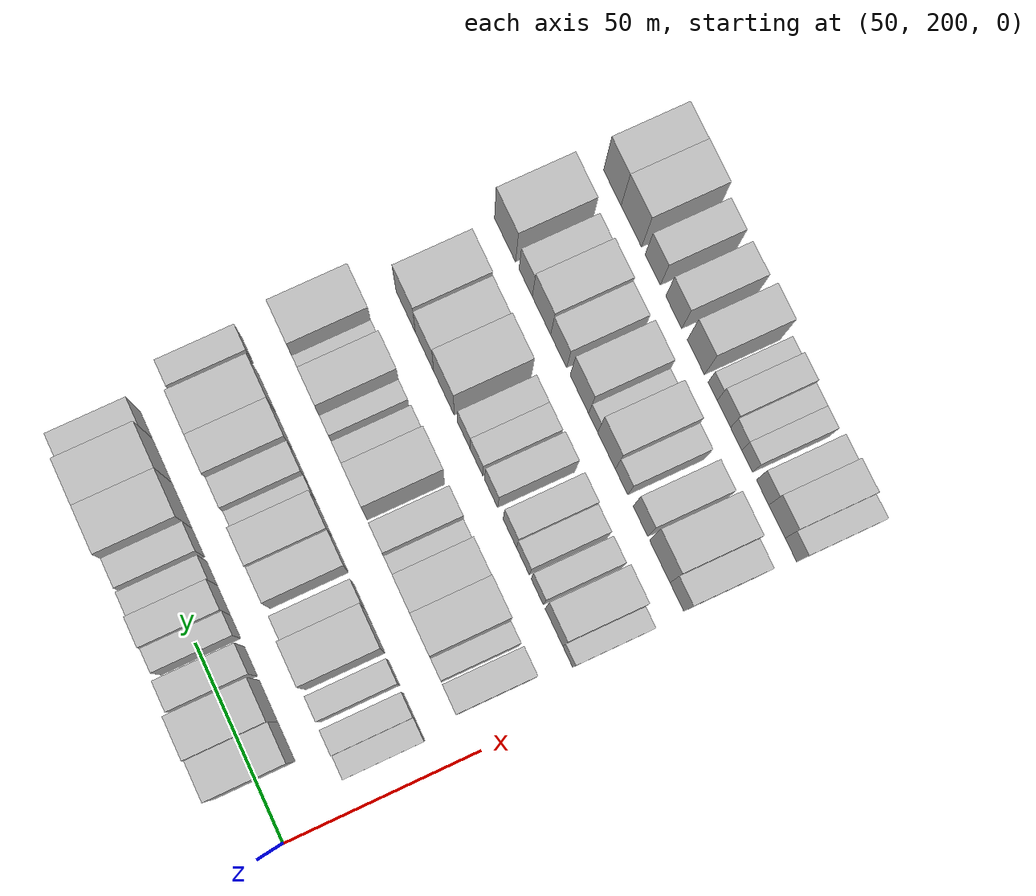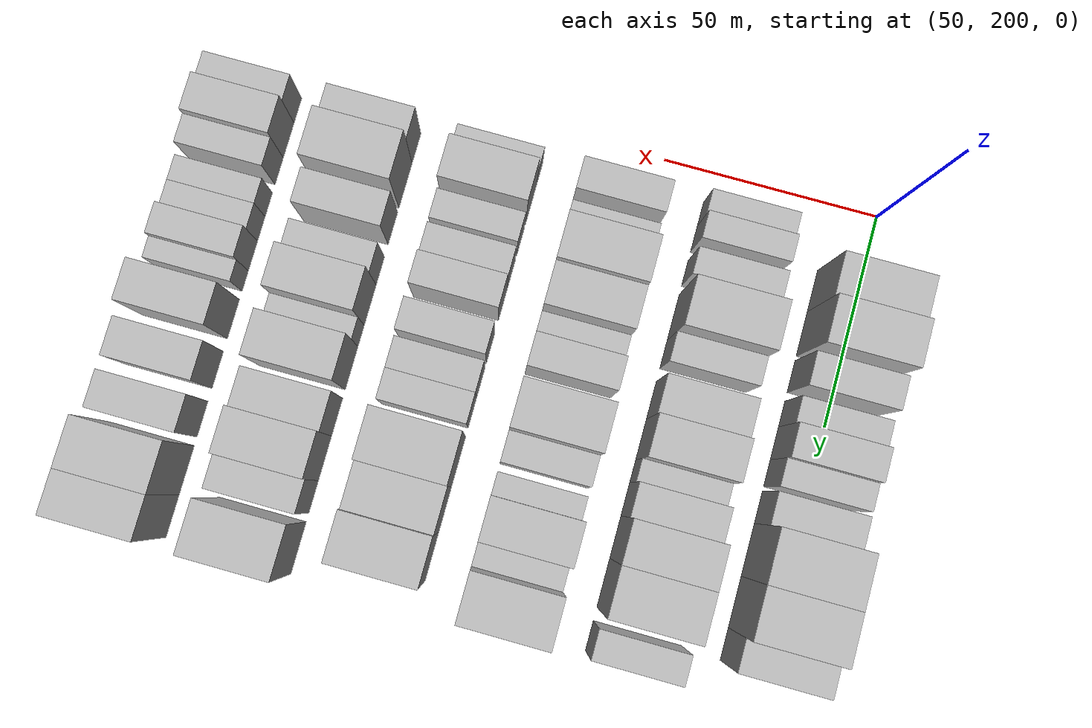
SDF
<sdf version="1.6">
 <world name="default">
  <model name="building_75">
   <static>1</static>
   <pose>50.0000 220.6125 0 0.000000 0.000000 0.000000</pose>
   <link name="link">
    <pose>0 0 10.50 0 0 0</pose>
    <collision name="collision"><geometry><box><size>20.0000 9.9234 21.0000</size></box></geometry></collision>
    <visual name="visual">
     <cast_shadows>0</cast_shadows>
     <geometry><box><size>20.0000 9.9234 21.0000</size></box></geometry>
     <material>
      <script>
       <uri>model://HANNAS_wall/materials/scripts</uri>
       <uri>model://HANNAS_wall/materials/textures</uri>
       <name>vrc/HANNAS_wall</name>
      </script>
     </material>
    </visual>
   </link>
  </model>
  <model name="building_76">
   <static>1</static>
   <pose>50.0000 230.8542 0 0.000000 0.000000 0.000000</pose>
   <link name="link">
    <pose>0 0 12.00 0 0 0</pose>
    <collision name="collision"><geometry><box><size>20.0000 10.5599 24.0000</size></box></geometry></collision>
    <visual name="visual">
     <cast_shadows>0</cast_shadows>
     <geometry><box><size>20.0000 10.5599 24.0000</size></box></geometry>
     <material>
      <script>
       <uri>model://HANNAS_wall/materials/scripts</uri>
       <uri>model://HANNAS_wall/materials/textures</uri>
       <name>vrc/HANNAS_wall</name>
      </script>
     </material>
    </visual>
   </link>
  </model>
  <model name="building_77">
   <static>1</static>
   <pose>50.0000 240.9055 0 0.000000 0.000000 0.000000</pose>
   <link name="link">
    <pose>0 0 9.00 0 0 0</pose>
    <collision name="collision"><geometry><box><size>20.0000 7.5427 18.0000</size></box></geometry></collision>
    <visual name="visual">
     <cast_shadows>0</cast_shadows>
     <geometry><box><size>20.0000 7.5427 18.0000</size></box></geometry>
     <material>
      <script>
       <uri>model://HANNAS_wall/materials/scripts</uri>
       <uri>model://HANNAS_wall/materials/textures</uri>
       <name>vrc/HANNAS_wall</name>
      </script>
     </material>
    </visual>
   </link>
  </model>
  <model name="building_78">
   <static>1</static>
   <pose>50.0000 249.6812 0 0.000000 0.000000 0.000000</pose>
   <link name="link">
    <pose>0 0 7.50 0 0 0</pose>
    <collision name="collision"><geometry><box><size>20.0000 6.0088 15.0000</size></box></geometry></collision>
    <visual name="visual">
     <cast_shadows>0</cast_shadows>
     <geometry><box><size>20.0000 6.0088 15.0000</size></box></geometry>
     <material>
      <script>
       <uri>model://HANNAS_wall/materials/scripts</uri>
       <uri>model://HANNAS_wall/materials/textures</uri>
       <name>vrc/HANNAS_wall</name>
      </script>
     </material>
    </visual>
   </link>
  </model>
  <model name="building_79">
   <static>1</static>
   <pose>50.0000 256.4952 0 0.000000 0.000000 0.000000</pose>
   <link name="link">
    <pose>0 0 9.00 0 0 0</pose>
    <collision name="collision"><geometry><box><size>20.0000 7.6191 18.0000</size></box></geometry></collision>
    <visual name="visual">
     <cast_shadows>0</cast_shadows>
     <geometry><box><size>20.0000 7.6191 18.0000</size></box></geometry>
     <material>
      <script>
       <uri>model://HANNAS_wall/materials/scripts</uri>
       <uri>model://HANNAS_wall/materials/textures</uri>
       <name>vrc/HANNAS_wall</name>
      </script>
     </material>
    </visual>
   </link>
  </model>
  <model name="building_80">
   <static>1</static>
   <pose>50.0000 263.4264 0 0.000000 0.000000 0.000000</pose>
   <link name="link">
    <pose>0 0 7.50 0 0 0</pose>
    <collision name="collision"><geometry><box><size>20.0000 6.2434 15.0000</size></box></geometry></collision>
    <visual name="visual">
     <cast_shadows>0</cast_shadows>
     <geometry><box><size>20.0000 6.2434 15.0000</size></box></geometry>
     <material>
      <script>
       <uri>model://HANNAS_wall/materials/scripts</uri>
       <uri>model://HANNAS_wall/materials/textures</uri>
       <name>vrc/HANNAS_wall</name>
      </script>
     </material>
    </visual>
   </link>
  </model>
  <model name="building_81">
   <static>1</static>
   <pose>50.0000 271.2515 0 0.000000 0.000000 0.000000</pose>
   <link name="link">
    <pose>0 0 7.50 0 0 0</pose>
    <collision name="collision"><geometry><box><size>20.0000 7.4068 15.0000</size></box></geometry></collision>
    <visual name="visual">
     <cast_shadows>0</cast_shadows>
     <geometry><box><size>20.0000 7.4068 15.0000</size></box></geometry>
     <material>
      <script>
       <uri>model://HANNAS_wall/materials/scripts</uri>
       <uri>model://HANNAS_wall/materials/textures</uri>
       <name>vrc/HANNAS_wall</name>
      </script>
     </material>
    </visual>
   </link>
  </model>
  <model name="building_82">
   <static>1</static>
   <pose>50.0000 280.9407 0 0.000000 0.000000 0.000000</pose>
   <link name="link">
    <pose>0 0 12.00 0 0 0</pose>
    <collision name="collision"><geometry><box><size>20.0000 11.9716 24.0000</size></box></geometry></collision>
    <visual name="visual">
     <cast_shadows>0</cast_shadows>
     <geometry><box><size>20.0000 11.9716 24.0000</size></box></geometry>
     <material>
      <script>
       <uri>model://HANNAS_wall/materials/scripts</uri>
       <uri>model://HANNAS_wall/materials/textures</uri>
       <name>vrc/HANNAS_wall</name>
      </script>
     </material>
    </visual>
   </link>
  </model>
  <model name="building_83">
   <static>1</static>
   <pose>50.0000 292.7229 0 0.000000 0.000000 0.000000</pose>
   <link name="link">
    <pose>0 0 12.00 0 0 0</pose>
    <collision name="collision"><geometry><box><size>20.0000 11.5927 24.0000</size></box></geometry></collision>
    <visual name="visual">
     <cast_shadows>0</cast_shadows>
     <geometry><box><size>20.0000 11.5927 24.0000</size></box></geometry>
     <material>
      <script>
       <uri>model://HANNAS_wall/materials/scripts</uri>
       <uri>model://HANNAS_wall/materials/textures</uri>
       <name>vrc/HANNAS_wall</name>
      </script>
     </material>
    </visual>
   </link>
  </model>
  <model name="building_84">
   <static>1</static>
   <pose>50.0000 302.1548 0 0.000000 0.000000 0.000000</pose>
   <link name="link">
    <pose>0 0 9.00 0 0 0</pose>
    <collision name="collision"><geometry><box><size>20.0000 7.2712 18.0000</size></box></geometry></collision>
    <visual name="visual">
     <cast_shadows>0</cast_shadows>
     <geometry><box><size>20.0000 7.2712 18.0000</size></box></geometry>
     <material>
      <script>
       <uri>model://HANNAS_wall/materials/scripts</uri>
       <uri>model://HANNAS_wall/materials/textures</uri>
       <name>vrc/HANNAS_wall</name>
      </script>
     </material>
    </visual>
   </link>
  </model>
  <model name="building_189">
   <static>1</static>
   <pose>79.0000 210.2139 0 0.000000 0.000000 0.000000</pose>
   <link name="link">
    <pose>0 0 6.00 0 0 0</pose>
    <collision name="collision"><geometry><box><size>20.0000 5.8128 12.0000</size></box></geometry></collision>
    <visual name="visual">
     <cast_shadows>0</cast_shadows>
     <geometry><box><size>20.0000 5.8128 12.0000</size></box></geometry>
     <material>
      <script>
       <uri>model://HANNAS_wall/materials/scripts</uri>
       <uri>model://HANNAS_wall/materials/textures</uri>
       <name>vrc/HANNAS_wall</name>
      </script>
     </material>
    </visual>
   </link>
  </model>
  <model name="building_190">
   <static>1</static>
   <pose>79.0000 216.2396 0 0.000000 0.000000 0.000000</pose>
   <link name="link">
    <pose>0 0 7.50 0 0 0</pose>
    <collision name="collision"><geometry><box><size>20.0000 6.2387 15.0000</size></box></geometry></collision>
    <visual name="visual">
     <cast_shadows>0</cast_shadows>
     <geometry><box><size>20.0000 6.2387 15.0000</size></box></geometry>
     <material>
      <script>
       <uri>model://HANNAS_wall/materials/scripts</uri>
       <uri>model://HANNAS_wall/materials/textures</uri>
       <name>vrc/HANNAS_wall</name>
      </script>
     </material>
    </visual>
   </link>
  </model>
  <model name="building_191">
   <static>1</static>
   <pose>79.0000 224.4495 0 0.000000 0.000000 0.000000</pose>
   <link name="link">
    <pose>0 0 7.50 0 0 0</pose>
    <collision name="collision"><geometry><box><size>20.0000 6.1810 15.0000</size></box></geometry></collision>
    <visual name="visual">
     <cast_shadows>0</cast_shadows>
     <geometry><box><size>20.0000 6.1810 15.0000</size></box></geometry>
     <material>
      <script>
       <uri>model://HANNAS_wall/materials/scripts</uri>
       <uri>model://HANNAS_wall/materials/textures</uri>
       <name>vrc/HANNAS_wall</name>
      </script>
     </material>
    </visual>
   </link>
  </model>
  <model name="building_192">
   <static>1</static>
   <pose>79.0000 235.0100 0 0.000000 0.000000 0.000000</pose>
   <link name="link">
    <pose>0 0 12.00 0 0 0</pose>
    <collision name="collision"><geometry><box><size>20.0000 10.9400 24.0000</size></box></geometry></collision>
    <visual name="visual">
     <cast_shadows>0</cast_shadows>
     <geometry><box><size>20.0000 10.9400 24.0000</size></box></geometry>
     <material>
      <script>
       <uri>model://HANNAS_wall/materials/scripts</uri>
       <uri>model://HANNAS_wall/materials/textures</uri>
       <name>vrc/HANNAS_wall</name>
      </script>
     </material>
    </visual>
   </link>
  </model>
  <model name="building_193">
   <static>1</static>
   <pose>79.0000 243.8193 0 0.000000 0.000000 0.000000</pose>
   <link name="link">
    <pose>0 0 7.50 0 0 0</pose>
    <collision name="collision"><geometry><box><size>20.0000 6.6786 15.0000</size></box></geometry></collision>
    <visual name="visual">
     <cast_shadows>0</cast_shadows>
     <geometry><box><size>20.0000 6.6786 15.0000</size></box></geometry>
     <material>
      <script>
       <uri>model://HANNAS_wall/materials/scripts</uri>
       <uri>model://HANNAS_wall/materials/textures</uri>
       <name>vrc/HANNAS_wall</name>
      </script>
     </material>
    </visual>
   </link>
  </model>
  <model name="building_194">
   <static>1</static>
   <pose>79.0000 254.5708 0 0.000000 0.000000 0.000000</pose>
   <link name="link">
    <pose>0 0 9.00 0 0 0</pose>
    <collision name="collision"><geometry><box><size>20.0000 8.8242 18.0000</size></box></geometry></collision>
    <visual name="visual">
     <cast_shadows>0</cast_shadows>
     <geometry><box><size>20.0000 8.8242 18.0000</size></box></geometry>
     <material>
      <script>
       <uri>model://HANNAS_wall/materials/scripts</uri>
       <uri>model://HANNAS_wall/materials/textures</uri>
       <name>vrc/HANNAS_wall</name>
      </script>
     </material>
    </visual>
   </link>
  </model>
  <model name="building_195">
   <static>1</static>
   <pose>79.0000 263.7029 0 0.000000 0.000000 0.000000</pose>
   <link name="link">
    <pose>0 0 10.50 0 0 0</pose>
    <collision name="collision"><geometry><box><size>20.0000 9.4400 21.0000</size></box></geometry></collision>
    <visual name="visual">
     <cast_shadows>0</cast_shadows>
     <geometry><box><size>20.0000 9.4400 21.0000</size></box></geometry>
     <material>
      <script>
       <uri>model://HANNAS_wall/materials/scripts</uri>
       <uri>model://HANNAS_wall/materials/textures</uri>
       <name>vrc/HANNAS_wall</name>
      </script>
     </material>
    </visual>
   </link>
  </model>
  <model name="building_196">
   <static>1</static>
   <pose>79.0000 271.0247 0 0.000000 0.000000 0.000000</pose>
   <link name="link">
    <pose>0 0 6.00 0 0 0</pose>
    <collision name="collision"><geometry><box><size>20.0000 5.2037 12.0000</size></box></geometry></collision>
    <visual name="visual">
     <cast_shadows>0</cast_shadows>
     <geometry><box><size>20.0000 5.2037 12.0000</size></box></geometry>
     <material>
      <script>
       <uri>model://HANNAS_wall/materials/scripts</uri>
       <uri>model://HANNAS_wall/materials/textures</uri>
       <name>vrc/HANNAS_wall</name>
      </script>
     </material>
    </visual>
   </link>
  </model>
  <model name="building_197">
   <static>1</static>
   <pose>79.0000 277.4621 0 0.000000 0.000000 0.000000</pose>
   <link name="link">
    <pose>0 0 9.00 0 0 0</pose>
    <collision name="collision"><geometry><box><size>20.0000 7.6711 18.0000</size></box></geometry></collision>
    <visual name="visual">
     <cast_shadows>0</cast_shadows>
     <geometry><box><size>20.0000 7.6711 18.0000</size></box></geometry>
     <material>
      <script>
       <uri>model://HANNAS_wall/materials/scripts</uri>
       <uri>model://HANNAS_wall/materials/textures</uri>
       <name>vrc/HANNAS_wall</name>
      </script>
     </material>
    </visual>
   </link>
  </model>
  <model name="building_198">
   <static>1</static>
   <pose>79.0000 286.1328 0 0.000000 0.000000 0.000000</pose>
   <link name="link">
    <pose>0 0 12.00 0 0 0</pose>
    <collision name="collision"><geometry><box><size>20.0000 9.6704 24.0000</size></box></geometry></collision>
    <visual name="visual">
     <cast_shadows>0</cast_shadows>
     <geometry><box><size>20.0000 9.6704 24.0000</size></box></geometry>
     <material>
      <script>
       <uri>model://HANNAS_wall/materials/scripts</uri>
       <uri>model://HANNAS_wall/materials/textures</uri>
       <name>vrc/HANNAS_wall</name>
      </script>
     </material>
    </visual>
   </link>
  </model>
  <model name="building_199">
   <static>1</static>
   <pose>79.0000 296.4888 0 0.000000 0.000000 0.000000</pose>
   <link name="link">
    <pose>0 0 12.00 0 0 0</pose>
    <collision name="collision"><geometry><box><size>20.0000 11.0415 24.0000</size></box></geometry></collision>
    <visual name="visual">
     <cast_shadows>0</cast_shadows>
     <geometry><box><size>20.0000 11.0415 24.0000</size></box></geometry>
     <material>
      <script>
       <uri>model://HANNAS_wall/materials/scripts</uri>
       <uri>model://HANNAS_wall/materials/textures</uri>
       <name>vrc/HANNAS_wall</name>
      </script>
     </material>
    </visual>
   </link>
  </model>
  <model name="building_200">
   <static>1</static>
   <pose>79.0000 308.3689 0 0.000000 0.000000 0.000000</pose>
   <link name="link">
    <pose>0 0 7.50 0 0 0</pose>
    <collision name="collision"><geometry><box><size>20.0000 6.7187 15.0000</size></box></geometry></collision>
    <visual name="visual">
     <cast_shadows>0</cast_shadows>
     <geometry><box><size>20.0000 6.7187 15.0000</size></box></geometry>
     <material>
      <script>
       <uri>model://HANNAS_wall/materials/scripts</uri>
       <uri>model://HANNAS_wall/materials/textures</uri>
       <name>vrc/HANNAS_wall</name>
      </script>
     </material>
    </visual>
   </link>
  </model>
  <model name="building_297">
   <static>1</static>
   <pose>108.0000 213.3092 0 0.000000 0.000000 0.000000</pose>
   <link name="link">
    <pose>0 0 9.00 0 0 0</pose>
    <collision name="collision"><geometry><box><size>20.0000 7.2638 18.0000</size></box></geometry></collision>
    <visual name="visual">
     <cast_shadows>0</cast_shadows>
     <geometry><box><size>20.0000 7.2638 18.0000</size></box></geometry>
     <material>
      <script>
       <uri>model://HANNAS_wall/materials/scripts</uri>
       <uri>model://HANNAS_wall/materials/textures</uri>
       <name>vrc/HANNAS_wall</name>
      </script>
     </material>
    </visual>
   </link>
  </model>
  <model name="building_298">
   <static>1</static>
   <pose>108.0000 220.7057 0 0.000000 0.000000 0.000000</pose>
   <link name="link">
    <pose>0 0 6.00 0 0 0</pose>
    <collision name="collision"><geometry><box><size>20.0000 5.5292 12.0000</size></box></geometry></collision>
    <visual name="visual">
     <cast_shadows>0</cast_shadows>
     <geometry><box><size>20.0000 5.5292 12.0000</size></box></geometry>
     <material>
      <script>
       <uri>model://HANNAS_wall/materials/scripts</uri>
       <uri>model://HANNAS_wall/materials/textures</uri>
       <name>vrc/HANNAS_wall</name>
      </script>
     </material>
    </visual>
   </link>
  </model>
  <model name="building_299">
   <static>1</static>
   <pose>108.0000 228.6592 0 0.000000 0.000000 0.000000</pose>
   <link name="link">
    <pose>0 0 12.00 0 0 0</pose>
    <collision name="collision"><geometry><box><size>20.0000 10.3778 24.0000</size></box></geometry></collision>
    <visual name="visual">
     <cast_shadows>0</cast_shadows>
     <geometry><box><size>20.0000 10.3778 24.0000</size></box></geometry>
     <material>
      <script>
       <uri>model://HANNAS_wall/materials/scripts</uri>
       <uri>model://HANNAS_wall/materials/textures</uri>
       <name>vrc/HANNAS_wall</name>
      </script>
     </material>
    </visual>
   </link>
  </model>
  <model name="building_300">
   <static>1</static>
   <pose>108.0000 238.6623 0 0.000000 0.000000 0.000000</pose>
   <link name="link">
    <pose>0 0 10.50 0 0 0</pose>
    <collision name="collision"><geometry><box><size>20.0000 9.6283 21.0000</size></box></geometry></collision>
    <visual name="visual">
     <cast_shadows>0</cast_shadows>
     <geometry><box><size>20.0000 9.6283 21.0000</size></box></geometry>
     <material>
      <script>
       <uri>model://HANNAS_wall/materials/scripts</uri>
       <uri>model://HANNAS_wall/materials/textures</uri>
       <name>vrc/HANNAS_wall</name>
      </script>
     </material>
    </visual>
   </link>
  </model>
  <model name="building_301">
   <static>1</static>
   <pose>108.0000 246.2206 0 0.000000 0.000000 0.000000</pose>
   <link name="link">
    <pose>0 0 6.00 0 0 0</pose>
    <collision name="collision"><geometry><box><size>20.0000 5.4883 12.0000</size></box></geometry></collision>
    <visual name="visual">
     <cast_shadows>0</cast_shadows>
     <geometry><box><size>20.0000 5.4883 12.0000</size></box></geometry>
     <material>
      <script>
       <uri>model://HANNAS_wall/materials/scripts</uri>
       <uri>model://HANNAS_wall/materials/textures</uri>
       <name>vrc/HANNAS_wall</name>
      </script>
     </material>
    </visual>
   </link>
  </model>
  <model name="building_302">
   <static>1</static>
   <pose>108.0000 252.7534 0 0.000000 0.000000 0.000000</pose>
   <link name="link">
    <pose>0 0 9.00 0 0 0</pose>
    <collision name="collision"><geometry><box><size>20.0000 7.5772 18.0000</size></box></geometry></collision>
    <visual name="visual">
     <cast_shadows>0</cast_shadows>
     <geometry><box><size>20.0000 7.5772 18.0000</size></box></geometry>
     <material>
      <script>
       <uri>model://HANNAS_wall/materials/scripts</uri>
       <uri>model://HANNAS_wall/materials/textures</uri>
       <name>vrc/HANNAS_wall</name>
      </script>
     </material>
    </visual>
   </link>
  </model>
  <model name="building_303">
   <static>1</static>
   <pose>108.0000 264.9683 0 0.000000 0.000000 0.000000</pose>
   <link name="link">
    <pose>0 0 12.00 0 0 0</pose>
    <collision name="collision"><geometry><box><size>20.0000 10.8527 24.0000</size></box></geometry></collision>
    <visual name="visual">
     <cast_shadows>0</cast_shadows>
     <geometry><box><size>20.0000 10.8527 24.0000</size></box></geometry>
     <material>
      <script>
       <uri>model://HANNAS_wall/materials/scripts</uri>
       <uri>model://HANNAS_wall/materials/textures</uri>
       <name>vrc/HANNAS_wall</name>
      </script>
     </material>
    </visual>
   </link>
  </model>
  <model name="building_304">
   <static>1</static>
   <pose>108.0000 273.9052 0 0.000000 0.000000 0.000000</pose>
   <link name="link">
    <pose>0 0 7.50 0 0 0</pose>
    <collision name="collision"><geometry><box><size>20.0000 7.0211 15.0000</size></box></geometry></collision>
    <visual name="visual">
     <cast_shadows>0</cast_shadows>
     <geometry><box><size>20.0000 7.0211 15.0000</size></box></geometry>
     <material>
      <script>
       <uri>model://HANNAS_wall/materials/scripts</uri>
       <uri>model://HANNAS_wall/materials/textures</uri>
       <name>vrc/HANNAS_wall</name>
      </script>
     </material>
    </visual>
   </link>
  </model>
  <model name="building_305">
   <static>1</static>
   <pose>108.0000 282.0111 0 0.000000 0.000000 0.000000</pose>
   <link name="link">
    <pose>0 0 6.00 0 0 0</pose>
    <collision name="collision"><geometry><box><size>20.0000 5.1906 12.0000</size></box></geometry></collision>
    <visual name="visual">
     <cast_shadows>0</cast_shadows>
     <geometry><box><size>20.0000 5.1906 12.0000</size></box></geometry>
     <material>
      <script>
       <uri>model://HANNAS_wall/materials/scripts</uri>
       <uri>model://HANNAS_wall/materials/textures</uri>
       <name>vrc/HANNAS_wall</name>
      </script>
     </material>
    </visual>
   </link>
  </model>
  <model name="building_306">
   <static>1</static>
   <pose>108.0000 289.4498 0 0.000000 0.000000 0.000000</pose>
   <link name="link">
    <pose>0 0 12.00 0 0 0</pose>
    <collision name="collision"><geometry><box><size>20.0000 9.6869 24.0000</size></box></geometry></collision>
    <visual name="visual">
     <cast_shadows>0</cast_shadows>
     <geometry><box><size>20.0000 9.6869 24.0000</size></box></geometry>
     <material>
      <script>
       <uri>model://HANNAS_wall/materials/scripts</uri>
       <uri>model://HANNAS_wall/materials/textures</uri>
       <name>vrc/HANNAS_wall</name>
      </script>
     </material>
    </visual>
   </link>
  </model>
  <model name="building_307">
   <static>1</static>
   <pose>108.0000 297.1903 0 0.000000 0.000000 0.000000</pose>
   <link name="link">
    <pose>0 0 6.00 0 0 0</pose>
    <collision name="collision"><geometry><box><size>20.0000 5.7941 12.0000</size></box></geometry></collision>
    <visual name="visual">
     <cast_shadows>0</cast_shadows>
     <geometry><box><size>20.0000 5.7941 12.0000</size></box></geometry>
     <material>
      <script>
       <uri>model://HANNAS_wall/materials/scripts</uri>
       <uri>model://HANNAS_wall/materials/textures</uri>
       <name>vrc/HANNAS_wall</name>
      </script>
     </material>
    </visual>
   </link>
  </model>
  <model name="building_308">
   <static>1</static>
   <pose>108.0000 305.6947 0 0.000000 0.000000 0.000000</pose>
   <link name="link">
    <pose>0 0 12.00 0 0 0</pose>
    <collision name="collision"><geometry><box><size>20.0000 11.2147 24.0000</size></box></geometry></collision>
    <visual name="visual">
     <cast_shadows>0</cast_shadows>
     <geometry><box><size>20.0000 11.2147 24.0000</size></box></geometry>
     <material>
      <script>
       <uri>model://HANNAS_wall/materials/scripts</uri>
       <uri>model://HANNAS_wall/materials/textures</uri>
       <name>vrc/HANNAS_wall</name>
      </script>
     </material>
    </visual>
   </link>
  </model>
  <model name="building_409">
   <static>1</static>
   <pose>137.0000 210.9420 0 0.000000 0.000000 0.000000</pose>
   <link name="link">
    <pose>0 0 6.00 0 0 0</pose>
    <collision name="collision"><geometry><box><size>20.0000 5.3533 12.0000</size></box></geometry></collision>
    <visual name="visual">
     <cast_shadows>0</cast_shadows>
     <geometry><box><size>20.0000 5.3533 12.0000</size></box></geometry>
     <material>
      <script>
       <uri>model://HANNAS_wall/materials/scripts</uri>
       <uri>model://HANNAS_wall/materials/textures</uri>
       <name>vrc/HANNAS_wall</name>
      </script>
     </material>
    </visual>
   </link>
  </model>
  <model name="building_410">
   <static>1</static>
   <pose>137.0000 218.4170 0 0.000000 0.000000 0.000000</pose>
   <link name="link">
    <pose>0 0 10.50 0 0 0</pose>
    <collision name="collision"><geometry><box><size>20.0000 9.5969 21.0000</size></box></geometry></collision>
    <visual name="visual">
     <cast_shadows>0</cast_shadows>
     <geometry><box><size>20.0000 9.5969 21.0000</size></box></geometry>
     <material>
      <script>
       <uri>model://HANNAS_wall/materials/scripts</uri>
       <uri>model://HANNAS_wall/materials/textures</uri>
       <name>vrc/HANNAS_wall</name>
      </script>
     </material>
    </visual>
   </link>
  </model>
  <model name="building_411">
   <static>1</static>
   <pose>137.0000 227.5620 0 0.000000 0.000000 0.000000</pose>
   <link name="link">
    <pose>0 0 7.50 0 0 0</pose>
    <collision name="collision"><geometry><box><size>20.0000 6.6931 15.0000</size></box></geometry></collision>
    <visual name="visual">
     <cast_shadows>0</cast_shadows>
     <geometry><box><size>20.0000 6.6931 15.0000</size></box></geometry>
     <material>
      <script>
       <uri>model://HANNAS_wall/materials/scripts</uri>
       <uri>model://HANNAS_wall/materials/textures</uri>
       <name>vrc/HANNAS_wall</name>
      </script>
     </material>
    </visual>
   </link>
  </model>
  <model name="building_412">
   <static>1</static>
   <pose>137.0000 235.4101 0 0.000000 0.000000 0.000000</pose>
   <link name="link">
    <pose>0 0 7.50 0 0 0</pose>
    <collision name="collision"><geometry><box><size>20.0000 7.0031 15.0000</size></box></geometry></collision>
    <visual name="visual">
     <cast_shadows>0</cast_shadows>
     <geometry><box><size>20.0000 7.0031 15.0000</size></box></geometry>
     <material>
      <script>
       <uri>model://HANNAS_wall/materials/scripts</uri>
       <uri>model://HANNAS_wall/materials/textures</uri>
       <name>vrc/HANNAS_wall</name>
      </script>
     </material>
    </visual>
   </link>
  </model>
  <model name="building_413">
   <static>1</static>
   <pose>137.0000 242.6305 0 0.000000 0.000000 0.000000</pose>
   <link name="link">
    <pose>0 0 9.00 0 0 0</pose>
    <collision name="collision"><geometry><box><size>20.0000 7.4377 18.0000</size></box></geometry></collision>
    <visual name="visual">
     <cast_shadows>0</cast_shadows>
     <geometry><box><size>20.0000 7.4377 18.0000</size></box></geometry>
     <material>
      <script>
       <uri>model://HANNAS_wall/materials/scripts</uri>
       <uri>model://HANNAS_wall/materials/textures</uri>
       <name>vrc/HANNAS_wall</name>
      </script>
     </material>
    </visual>
   </link>
  </model>
  <model name="building_414">
   <static>1</static>
   <pose>137.0000 252.9857 0 0.000000 0.000000 0.000000</pose>
   <link name="link">
    <pose>0 0 9.00 0 0 0</pose>
    <collision name="collision"><geometry><box><size>20.0000 7.2727 18.0000</size></box></geometry></collision>
    <visual name="visual">
     <cast_shadows>0</cast_shadows>
     <geometry><box><size>20.0000 7.2727 18.0000</size></box></geometry>
     <material>
      <script>
       <uri>model://HANNAS_wall/materials/scripts</uri>
       <uri>model://HANNAS_wall/materials/textures</uri>
       <name>vrc/HANNAS_wall</name>
      </script>
     </material>
    </visual>
   </link>
  </model>
  <model name="building_415">
   <static>1</static>
   <pose>137.0000 261.1568 0 0.000000 0.000000 0.000000</pose>
   <link name="link">
    <pose>0 0 7.50 0 0 0</pose>
    <collision name="collision"><geometry><box><size>20.0000 7.0695 15.0000</size></box></geometry></collision>
    <visual name="visual">
     <cast_shadows>0</cast_shadows>
     <geometry><box><size>20.0000 7.0695 15.0000</size></box></geometry>
     <material>
      <script>
       <uri>model://HANNAS_wall/materials/scripts</uri>
       <uri>model://HANNAS_wall/materials/textures</uri>
       <name>vrc/HANNAS_wall</name>
      </script>
     </material>
    </visual>
   </link>
  </model>
  <model name="building_416">
   <static>1</static>
   <pose>137.0000 268.1828 0 0.000000 0.000000 0.000000</pose>
   <link name="link">
    <pose>0 0 7.50 0 0 0</pose>
    <collision name="collision"><geometry><box><size>20.0000 6.9826 15.0000</size></box></geometry></collision>
    <visual name="visual">
     <cast_shadows>0</cast_shadows>
     <geometry><box><size>20.0000 6.9826 15.0000</size></box></geometry>
     <material>
      <script>
       <uri>model://HANNAS_wall/materials/scripts</uri>
       <uri>model://HANNAS_wall/materials/textures</uri>
       <name>vrc/HANNAS_wall</name>
      </script>
     </material>
    </visual>
   </link>
  </model>
  <model name="building_417">
   <static>1</static>
   <pose>137.0000 279.4646 0 0.000000 0.000000 0.000000</pose>
   <link name="link">
    <pose>0 0 12.00 0 0 0</pose>
    <collision name="collision"><geometry><box><size>20.0000 11.5808 24.0000</size></box></geometry></collision>
    <visual name="visual">
     <cast_shadows>0</cast_shadows>
     <geometry><box><size>20.0000 11.5808 24.0000</size></box></geometry>
     <material>
      <script>
       <uri>model://HANNAS_wall/materials/scripts</uri>
       <uri>model://HANNAS_wall/materials/textures</uri>
       <name>vrc/HANNAS_wall</name>
      </script>
     </material>
    </visual>
   </link>
  </model>
  <model name="building_418">
   <static>1</static>
   <pose>137.0000 290.4522 0 0.000000 0.000000 0.000000</pose>
   <link name="link">
    <pose>0 0 10.50 0 0 0</pose>
    <collision name="collision"><geometry><box><size>20.0000 10.3944 21.0000</size></box></geometry></collision>
    <visual name="visual">
     <cast_shadows>0</cast_shadows>
     <geometry><box><size>20.0000 10.3944 21.0000</size></box></geometry>
     <material>
      <script>
       <uri>model://HANNAS_wall/materials/scripts</uri>
       <uri>model://HANNAS_wall/materials/textures</uri>
       <name>vrc/HANNAS_wall</name>
      </script>
     </material>
    </visual>
   </link>
  </model>
  <model name="building_419">
   <static>1</static>
   <pose>137.0000 301.1891 0 0.000000 0.000000 0.000000</pose>
   <link name="link">
    <pose>0 0 12.00 0 0 0</pose>
    <collision name="collision"><geometry><box><size>20.0000 11.0795 24.0000</size></box></geometry></collision>
    <visual name="visual">
     <cast_shadows>0</cast_shadows>
     <geometry><box><size>20.0000 11.0795 24.0000</size></box></geometry>
     <material>
      <script>
       <uri>model://HANNAS_wall/materials/scripts</uri>
       <uri>model://HANNAS_wall/materials/textures</uri>
       <name>vrc/HANNAS_wall</name>
      </script>
     </material>
    </visual>
   </link>
  </model>
  <model name="building_530">
   <static>1</static>
   <pose>166.0000 212.7707 0 0.000000 0.000000 0.000000</pose>
   <link name="link">
    <pose>0 0 9.00 0 0 0</pose>
    <collision name="collision"><geometry><box><size>20.0000 7.3606 18.0000</size></box></geometry></collision>
    <visual name="visual">
     <cast_shadows>0</cast_shadows>
     <geometry><box><size>20.0000 7.3606 18.0000</size></box></geometry>
     <material>
      <script>
       <uri>model://HANNAS_wall/materials/scripts</uri>
       <uri>model://HANNAS_wall/materials/textures</uri>
       <name>vrc/HANNAS_wall</name>
      </script>
     </material>
    </visual>
   </link>
  </model>
  <model name="building_531">
   <static>1</static>
   <pose>166.0000 221.9072 0 0.000000 0.000000 0.000000</pose>
   <link name="link">
    <pose>0 0 12.00 0 0 0</pose>
    <collision name="collision"><geometry><box><size>20.0000 10.9125 24.0000</size></box></geometry></collision>
    <visual name="visual">
     <cast_shadows>0</cast_shadows>
     <geometry><box><size>20.0000 10.9125 24.0000</size></box></geometry>
     <material>
      <script>
       <uri>model://HANNAS_wall/materials/scripts</uri>
       <uri>model://HANNAS_wall/materials/textures</uri>
       <name>vrc/HANNAS_wall</name>
      </script>
     </material>
    </visual>
   </link>
  </model>
  <model name="building_532">
   <static>1</static>
   <pose>166.0000 232.2874 0 0.000000 0.000000 0.000000</pose>
   <link name="link">
    <pose>0 0 9.00 0 0 0</pose>
    <collision name="collision"><geometry><box><size>20.0000 7.8477 18.0000</size></box></geometry></collision>
    <visual name="visual">
     <cast_shadows>0</cast_shadows>
     <geometry><box><size>20.0000 7.8477 18.0000</size></box></geometry>
     <material>
      <script>
       <uri>model://HANNAS_wall/materials/scripts</uri>
       <uri>model://HANNAS_wall/materials/textures</uri>
       <name>vrc/HANNAS_wall</name>
      </script>
     </material>
    </visual>
   </link>
  </model>
  <model name="building_533">
   <static>1</static>
   <pose>166.0000 242.5824 0 0.000000 0.000000 0.000000</pose>
   <link name="link">
    <pose>0 0 7.50 0 0 0</pose>
    <collision name="collision"><geometry><box><size>20.0000 6.7424 15.0000</size></box></geometry></collision>
    <visual name="visual">
     <cast_shadows>0</cast_shadows>
     <geometry><box><size>20.0000 6.7424 15.0000</size></box></geometry>
     <material>
      <script>
       <uri>model://HANNAS_wall/materials/scripts</uri>
       <uri>model://HANNAS_wall/materials/textures</uri>
       <name>vrc/HANNAS_wall</name>
      </script>
     </material>
    </visual>
   </link>
  </model>
  <model name="building_534">
   <static>1</static>
   <pose>166.0000 250.7622 0 0.000000 0.000000 0.000000</pose>
   <link name="link">
    <pose>0 0 10.50 0 0 0</pose>
    <collision name="collision"><geometry><box><size>20.0000 9.6173 21.0000</size></box></geometry></collision>
    <visual name="visual">
     <cast_shadows>0</cast_shadows>
     <geometry><box><size>20.0000 9.6173 21.0000</size></box></geometry>
     <material>
      <script>
       <uri>model://HANNAS_wall/materials/scripts</uri>
       <uri>model://HANNAS_wall/materials/textures</uri>
       <name>vrc/HANNAS_wall</name>
      </script>
     </material>
    </visual>
   </link>
  </model>
  <model name="building_535">
   <static>1</static>
   <pose>166.0000 258.0806 0 0.000000 0.000000 0.000000</pose>
   <link name="link">
    <pose>0 0 6.00 0 0 0</pose>
    <collision name="collision"><geometry><box><size>20.0000 5.0195 12.0000</size></box></geometry></collision>
    <visual name="visual">
     <cast_shadows>0</cast_shadows>
     <geometry><box><size>20.0000 5.0195 12.0000</size></box></geometry>
     <material>
      <script>
       <uri>model://HANNAS_wall/materials/scripts</uri>
       <uri>model://HANNAS_wall/materials/textures</uri>
       <name>vrc/HANNAS_wall</name>
      </script>
     </material>
    </visual>
   </link>
  </model>
  <model name="building_536">
   <static>1</static>
   <pose>166.0000 265.6817 0 0.000000 0.000000 0.000000</pose>
   <link name="link">
    <pose>0 0 10.50 0 0 0</pose>
    <collision name="collision"><geometry><box><size>20.0000 10.1827 21.0000</size></box></geometry></collision>
    <visual name="visual">
     <cast_shadows>0</cast_shadows>
     <geometry><box><size>20.0000 10.1827 21.0000</size></box></geometry>
     <material>
      <script>
       <uri>model://HANNAS_wall/materials/scripts</uri>
       <uri>model://HANNAS_wall/materials/textures</uri>
       <name>vrc/HANNAS_wall</name>
      </script>
     </material>
    </visual>
   </link>
  </model>
  <model name="building_537">
   <static>1</static>
   <pose>166.0000 277.1974 0 0.000000 0.000000 0.000000</pose>
   <link name="link">
    <pose>0 0 9.00 0 0 0</pose>
    <collision name="collision"><geometry><box><size>20.0000 8.8487 18.0000</size></box></geometry></collision>
    <visual name="visual">
     <cast_shadows>0</cast_shadows>
     <geometry><box><size>20.0000 8.8487 18.0000</size></box></geometry>
     <material>
      <script>
       <uri>model://HANNAS_wall/materials/scripts</uri>
       <uri>model://HANNAS_wall/materials/textures</uri>
       <name>vrc/HANNAS_wall</name>
      </script>
     </material>
    </visual>
   </link>
  </model>
  <model name="building_538">
   <static>1</static>
   <pose>166.0000 286.7512 0 0.000000 0.000000 0.000000</pose>
   <link name="link">
    <pose>0 0 10.50 0 0 0</pose>
    <collision name="collision"><geometry><box><size>20.0000 10.2589 21.0000</size></box></geometry></collision>
    <visual name="visual">
     <cast_shadows>0</cast_shadows>
     <geometry><box><size>20.0000 10.2589 21.0000</size></box></geometry>
     <material>
      <script>
       <uri>model://HANNAS_wall/materials/scripts</uri>
       <uri>model://HANNAS_wall/materials/textures</uri>
       <name>vrc/HANNAS_wall</name>
      </script>
     </material>
    </visual>
   </link>
  </model>
  <model name="building_539">
   <static>1</static>
   <pose>166.0000 295.6005 0 0.000000 0.000000 0.000000</pose>
   <link name="link">
    <pose>0 0 9.00 0 0 0</pose>
    <collision name="collision"><geometry><box><size>20.0000 7.4397 18.0000</size></box></geometry></collision>
    <visual name="visual">
     <cast_shadows>0</cast_shadows>
     <geometry><box><size>20.0000 7.4397 18.0000</size></box></geometry>
     <material>
      <script>
       <uri>model://HANNAS_wall/materials/scripts</uri>
       <uri>model://HANNAS_wall/materials/textures</uri>
       <name>vrc/HANNAS_wall</name>
      </script>
     </material>
    </visual>
   </link>
  </model>
  <model name="building_540">
   <static>1</static>
   <pose>166.0000 307.2718 0 0.000000 0.000000 0.000000</pose>
   <link name="link">
    <pose>0 0 12.00 0 0 0</pose>
    <collision name="collision"><geometry><box><size>20.0000 11.9030 24.0000</size></box></geometry></collision>
    <visual name="visual">
     <cast_shadows>0</cast_shadows>
     <geometry><box><size>20.0000 11.9030 24.0000</size></box></geometry>
     <material>
      <script>
       <uri>model://HANNAS_wall/materials/scripts</uri>
       <uri>model://HANNAS_wall/materials/textures</uri>
       <name>vrc/HANNAS_wall</name>
      </script>
     </material>
    </visual>
   </link>
  </model>
  <model name="building_643">
   <static>1</static>
   <pose>195.0000 211.4371 0 0.000000 0.000000 0.000000</pose>
   <link name="link">
    <pose>0 0 7.50 0 0 0</pose>
    <collision name="collision"><geometry><box><size>20.0000 6.1326 15.0000</size></box></geometry></collision>
    <visual name="visual">
     <cast_shadows>0</cast_shadows>
     <geometry><box><size>20.0000 6.1326 15.0000</size></box></geometry>
     <material>
      <script>
       <uri>model://HANNAS_wall/materials/scripts</uri>
       <uri>model://HANNAS_wall/materials/textures</uri>
       <name>vrc/HANNAS_wall</name>
      </script>
     </material>
    </visual>
   </link>
  </model>
  <model name="building_644">
   <static>1</static>
   <pose>195.0000 218.7978 0 0.000000 0.000000 0.000000</pose>
   <link name="link">
    <pose>0 0 9.00 0 0 0</pose>
    <collision name="collision"><geometry><box><size>20.0000 8.5888 18.0000</size></box></geometry></collision>
    <visual name="visual">
     <cast_shadows>0</cast_shadows>
     <geometry><box><size>20.0000 8.5888 18.0000</size></box></geometry>
     <material>
      <script>
       <uri>model://HANNAS_wall/materials/scripts</uri>
       <uri>model://HANNAS_wall/materials/textures</uri>
       <name>vrc/HANNAS_wall</name>
      </script>
     </material>
    </visual>
   </link>
  </model>
  <model name="building_645">
   <static>1</static>
   <pose>195.0000 226.3855 0 0.000000 0.000000 0.000000</pose>
   <link name="link">
    <pose>0 0 7.50 0 0 0</pose>
    <collision name="collision"><geometry><box><size>20.0000 6.5867 15.0000</size></box></geometry></collision>
    <visual name="visual">
     <cast_shadows>0</cast_shadows>
     <geometry><box><size>20.0000 6.5867 15.0000</size></box></geometry>
     <material>
      <script>
       <uri>model://HANNAS_wall/materials/scripts</uri>
       <uri>model://HANNAS_wall/materials/textures</uri>
       <name>vrc/HANNAS_wall</name>
      </script>
     </material>
    </visual>
   </link>
  </model>
  <model name="building_646">
   <static>1</static>
   <pose>195.0000 234.5809 0 0.000000 0.000000 0.000000</pose>
   <link name="link">
    <pose>0 0 6.00 0 0 0</pose>
    <collision name="collision"><geometry><box><size>20.0000 5.8040 12.0000</size></box></geometry></collision>
    <visual name="visual">
     <cast_shadows>0</cast_shadows>
     <geometry><box><size>20.0000 5.8040 12.0000</size></box></geometry>
     <material>
      <script>
       <uri>model://HANNAS_wall/materials/scripts</uri>
       <uri>model://HANNAS_wall/materials/textures</uri>
       <name>vrc/HANNAS_wall</name>
      </script>
     </material>
    </visual>
   </link>
  </model>
  <model name="building_647">
   <static>1</static>
   <pose>195.0000 240.4578 0 0.000000 0.000000 0.000000</pose>
   <link name="link">
    <pose>0 0 6.00 0 0 0</pose>
    <collision name="collision"><geometry><box><size>20.0000 5.9497 12.0000</size></box></geometry></collision>
    <visual name="visual">
     <cast_shadows>0</cast_shadows>
     <geometry><box><size>20.0000 5.9497 12.0000</size></box></geometry>
     <material>
      <script>
       <uri>model://HANNAS_wall/materials/scripts</uri>
       <uri>model://HANNAS_wall/materials/textures</uri>
       <name>vrc/HANNAS_wall</name>
      </script>
     </material>
    </visual>
   </link>
  </model>
  <model name="building_648">
   <static>1</static>
   <pose>195.0000 247.0094 0 0.000000 0.000000 0.000000</pose>
   <link name="link">
    <pose>0 0 7.50 0 0 0</pose>
    <collision name="collision"><geometry><box><size>20.0000 7.1536 15.0000</size></box></geometry></collision>
    <visual name="visual">
     <cast_shadows>0</cast_shadows>
     <geometry><box><size>20.0000 7.1536 15.0000</size></box></geometry>
     <material>
      <script>
       <uri>model://HANNAS_wall/materials/scripts</uri>
       <uri>model://HANNAS_wall/materials/textures</uri>
       <name>vrc/HANNAS_wall</name>
      </script>
     </material>
    </visual>
   </link>
  </model>
  <model name="building_649">
   <static>1</static>
   <pose>195.0000 253.0396 0 0.000000 0.000000 0.000000</pose>
   <link name="link">
    <pose>0 0 6.00 0 0 0</pose>
    <collision name="collision"><geometry><box><size>20.0000 4.9067 12.0000</size></box></geometry></collision>
    <visual name="visual">
     <cast_shadows>0</cast_shadows>
     <geometry><box><size>20.0000 4.9067 12.0000</size></box></geometry>
     <material>
      <script>
       <uri>model://HANNAS_wall/materials/scripts</uri>
       <uri>model://HANNAS_wall/materials/textures</uri>
       <name>vrc/HANNAS_wall</name>
      </script>
     </material>
    </visual>
   </link>
  </model>
  <model name="building_650">
   <static>1</static>
   <pose>195.0000 262.1545 0 0.000000 0.000000 0.000000</pose>
   <link name="link">
    <pose>0 0 10.50 0 0 0</pose>
    <collision name="collision"><geometry><box><size>20.0000 9.3233 21.0000</size></box></geometry></collision>
    <visual name="visual">
     <cast_shadows>0</cast_shadows>
     <geometry><box><size>20.0000 9.3233 21.0000</size></box></geometry>
     <material>
      <script>
       <uri>model://HANNAS_wall/materials/scripts</uri>
       <uri>model://HANNAS_wall/materials/textures</uri>
       <name>vrc/HANNAS_wall</name>
      </script>
     </material>
    </visual>
   </link>
  </model>
  <model name="building_651">
   <static>1</static>
   <pose>195.0000 274.1827 0 0.000000 0.000000 0.000000</pose>
   <link name="link">
    <pose>0 0 9.00 0 0 0</pose>
    <collision name="collision"><geometry><box><size>20.0000 8.7331 18.0000</size></box></geometry></collision>
    <visual name="visual">
     <cast_shadows>0</cast_shadows>
     <geometry><box><size>20.0000 8.7331 18.0000</size></box></geometry>
     <material>
      <script>
       <uri>model://HANNAS_wall/materials/scripts</uri>
       <uri>model://HANNAS_wall/materials/textures</uri>
       <name>vrc/HANNAS_wall</name>
      </script>
     </material>
    </visual>
   </link>
  </model>
  <model name="building_652">
   <static>1</static>
   <pose>195.0000 285.7259 0 0.000000 0.000000 0.000000</pose>
   <link name="link">
    <pose>0 0 9.00 0 0 0</pose>
    <collision name="collision"><geometry><box><size>20.0000 8.3532 18.0000</size></box></geometry></collision>
    <visual name="visual">
     <cast_shadows>0</cast_shadows>
     <geometry><box><size>20.0000 8.3532 18.0000</size></box></geometry>
     <material>
      <script>
       <uri>model://HANNAS_wall/materials/scripts</uri>
       <uri>model://HANNAS_wall/materials/textures</uri>
       <name>vrc/HANNAS_wall</name>
      </script>
     </material>
    </visual>
   </link>
  </model>
  <model name="building_653">
   <static>1</static>
   <pose>195.0000 297.5687 0 0.000000 0.000000 0.000000</pose>
   <link name="link">
    <pose>0 0 12.00 0 0 0</pose>
    <collision name="collision"><geometry><box><size>20.0000 11.3325 24.0000</size></box></geometry></collision>
    <visual name="visual">
     <cast_shadows>0</cast_shadows>
     <geometry><box><size>20.0000 11.3325 24.0000</size></box></geometry>
     <material>
      <script>
       <uri>model://HANNAS_wall/materials/scripts</uri>
       <uri>model://HANNAS_wall/materials/textures</uri>
       <name>vrc/HANNAS_wall</name>
      </script>
     </material>
    </visual>
   </link>
  </model>
  <model name="building_654">
   <static>1</static>
   <pose>195.0000 308.1286 0 0.000000 0.000000 0.000000</pose>
   <link name="link">
    <pose>0 0 12.00 0 0 0</pose>
    <collision name="collision"><geometry><box><size>20.0000 9.7871 24.0000</size></box></geometry></collision>
    <visual name="visual">
     <cast_shadows>0</cast_shadows>
     <geometry><box><size>20.0000 9.7871 24.0000</size></box></geometry>
     <material>
      <script>
       <uri>model://HANNAS_wall/materials/scripts</uri>
       <uri>model://HANNAS_wall/materials/textures</uri>
       <name>vrc/HANNAS_wall</name>
      </script>
     </material>
    </visual>
   </link>
  </model>
 </world>
</sdf>
